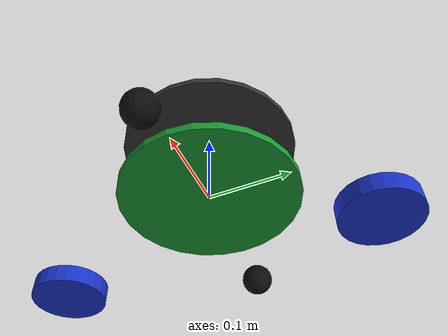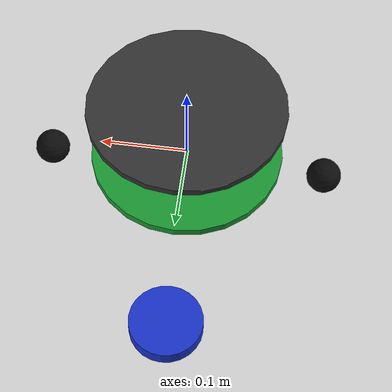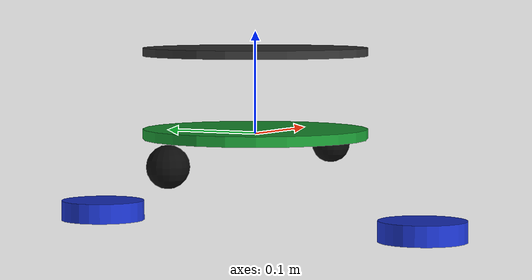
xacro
<?xml version="1.0"?>
<robot xmlns:xacro="http://ros.org/wiki/xacro" name="neural_knights_rover">

  <!-- Include files -->
  <xacro:include filename="rover_properties.xacro"/>
  <xacro:include filename="rover_macros.xacro"/>

  <!-- Base link -->
  <link name="base_link">
    <visual>
      <origin xyz="0 0 0" rpy="0 0 0"/>
      <geometry><cylinder radius="${Rlower}" length="${lower_plate_thk}"/></geometry>
      <material name="green"/>
    </visual>
    <collision>
      <origin xyz="0 0 0" rpy="0 0 0"/>
      <geometry><cylinder radius="${Rlower}" length="${lower_plate_thk}"/></geometry>
    </collision>
  </link>

  <!-- Upper plate -->
  <link name="upper_plate">
    <visual>
      <origin xyz="0 0 ${plate_gap}" rpy="0 0 0"/>
      <geometry><cylinder radius="${Rupper}" length="${upper_plate_thk}"/></geometry>
      <material name="dark_grey"/>
    </visual>
    <collision>
      <origin xyz="0 0 ${plate_gap}" rpy="0 0 0"/>
      <geometry><cylinder radius="${Rupper}" length="${upper_plate_thk}"/></geometry>
    </collision>
  </link>

  <joint name="upper_plate_mount" type="fixed">
    <parent link="base_link"/>
    <child link="upper_plate"/>
    <origin xyz="0 0 0" rpy="0 0 0"/>
  </joint>

  <!-- Wheels -->
  <xacro:drive_wheel name="left_wheel" ysign="1"/>
  <xacro:drive_wheel name="right_wheel" ysign="-1"/>

  <!-- Casters -->
  <xacro:caster name="front_caster" xsign="1"/>
  <xacro:caster name="rear_caster" xsign="-1"/>

</robot>

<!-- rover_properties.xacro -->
<robot xmlns:xacro="http://ros.org/wiki/xacro">

  <!-- Robot properties -->
  <xacro:property name="wheel_diam" value="0.085"/>
  <xacro:property name="wheel_width" value="0.02"/>
  <xacro:property name="wheel_sep" value="0.18"/>
  <xacro:property name="caster_diam" value="0.04"/>
  <xacro:property name="lower_plate_diam" value="0.22"/>
  <xacro:property name="lower_plate_thk" value="0.01"/>
  <xacro:property name="upper_plate_diam" value="0.22"/>
  <xacro:property name="upper_plate_thk" value="0.008"/>
  <xacro:property name="plate_gap" value="0.08"/>
  <xacro:property name="m_lower" value="1.2"/>
  <xacro:property name="m_upper" value="0.8"/>
  <xacro:property name="m_wheel" value="0.15"/>
  <xacro:property name="m_cast" value="0.05"/>

  <!-- Derived values -->
  <xacro:property name="Rlower" value="${lower_plate_diam/2.0}"/>
  <xacro:property name="Rupper" value="${upper_plate_diam/2.0}"/>
  <xacro:property name="Rwheel" value="${wheel_diam/2.0}"/>
  <xacro:property name="Rcaster" value="${caster_diam/2.0}"/>

  <!-- Colors -->
  <material name="dark_grey"><color rgba="0.2 0.2 0.2 1.0"/></material>
  <material name="blue"><color rgba="0.1 0.2 0.8 1.0"/></material>
  <material name="green"><color rgba="0.1 0.6 0.2 1.0"/></material>
  <material name="black"><color rgba="0.05 0.05 0.05 1.0"/></material>

</robot>

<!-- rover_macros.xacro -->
<robot xmlns:xacro="http://ros.org/wiki/xacro">

  <!-- Drive wheel macro -->
  <xacro:macro name="drive_wheel" params="name ysign">
    <link name="${name}">
      <visual>
        <origin xyz="0 ${ysign*wheel_sep/2.0} ${-Rwheel}" rpy="0 0 0"/>
        <geometry><cylinder radius="${Rwheel}" length="${wheel_width}"/></geometry>
        <material name="blue"/>
      </visual>
      <collision>
        <origin xyz="0 ${ysign*wheel_sep/2.0} ${-Rwheel}" rpy="0 0 0"/>
        <geometry><cylinder radius="${Rwheel}" length="${wheel_width}"/></geometry>
      </collision>
    </link>

    <joint name="${name}_joint" type="continuous">
      <parent link="base_link"/>
      <child link="${name}"/>
      <origin xyz="0 ${ysign*wheel_sep/2.0} ${-Rwheel}" rpy="0 0 0"/>
      <axis xyz="0 1 0"/>
    </joint>
  </xacro:macro>

  <!-- Caster macro -->
  <xacro:macro name="caster" params="name xsign">
    <link name="${name}">
      <visual>
        <origin xyz="${xsign*(Rlower-0.03)} 0 ${-Rcaster}" rpy="0 0 0"/>
        <geometry><sphere radius="${Rcaster}"/></geometry>
        <material name="black"/>
      </visual>
      <collision>
        <origin xyz="${xsign*(Rlower-0.03)} 0 ${-Rcaster}" rpy="0 0 0"/>
        <geometry><sphere radius="${Rcaster}"/></geometry>
      </collision>
    </link>

    <joint name="${name}_mount" type="fixed">
      <parent link="base_link"/>
      <child link="${name}"/>
      <origin xyz="${xsign*(Rlower-0.03)} 0 0" rpy="0 0 0"/>
    </joint>
  </xacro:macro>

</robot>
